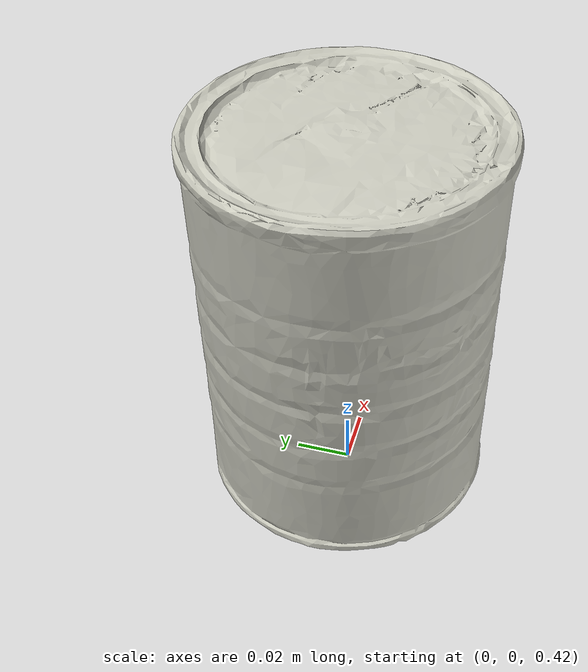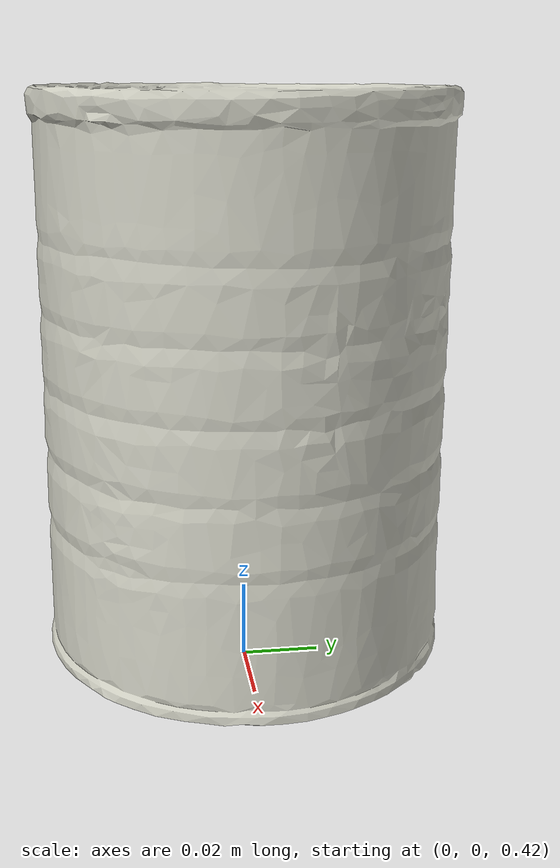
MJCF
<mujoco>
  <asset>
    <mesh name="002_master_chef_can_visual" file="objects/002_master_chef_can/visual.stl" />
    <mesh name="002_master_chef_can_col_00" file="objects/002_master_chef_can/collision/002_master_chef_can_00.stl" />
    <mesh name="002_master_chef_can_col_01" file="objects/002_master_chef_can/collision/002_master_chef_can_01.stl" />
    <mesh name="002_master_chef_can_col_02" file="objects/002_master_chef_can/collision/002_master_chef_can_02.stl" />
    <mesh name="002_master_chef_can_col_03" file="objects/002_master_chef_can/collision/002_master_chef_can_03.stl" />
    <mesh name="002_master_chef_can_col_04" file="objects/002_master_chef_can/collision/002_master_chef_can_04.stl" />
    <mesh name="002_master_chef_can_col_05" file="objects/002_master_chef_can/collision/002_master_chef_can_05.stl" />
    <mesh name="002_master_chef_can_col_06" file="objects/002_master_chef_can/collision/002_master_chef_can_06.stl" />
    <mesh name="002_master_chef_can_col_07" file="objects/002_master_chef_can/collision/002_master_chef_can_07.stl" />
    <mesh name="002_master_chef_can_col_08" file="objects/002_master_chef_can/collision/002_master_chef_can_08.stl" />
    <mesh name="002_master_chef_can_col_09" file="objects/002_master_chef_can/collision/002_master_chef_can_09.stl" />
    <mesh name="002_master_chef_can_col_10" file="objects/002_master_chef_can/collision/002_master_chef_can_10.stl" />
    <mesh name="002_master_chef_can_col_11" file="objects/002_master_chef_can/collision/002_master_chef_can_11.stl" />
    <mesh name="002_master_chef_can_col_12" file="objects/002_master_chef_can/collision/002_master_chef_can_12.stl" />
    <mesh name="002_master_chef_can_col_13" file="objects/002_master_chef_can/collision/002_master_chef_can_13.stl" />
    <mesh name="002_master_chef_can_col_14" file="objects/002_master_chef_can/collision/002_master_chef_can_14.stl" />
    <mesh name="002_master_chef_can_col_15" file="objects/002_master_chef_can/collision/002_master_chef_can_15.stl" />
    <mesh name="002_master_chef_can_col_16" file="objects/002_master_chef_can/collision/002_master_chef_can_16.stl" />
    <mesh name="002_master_chef_can_col_17" file="objects/002_master_chef_can/collision/002_master_chef_can_17.stl" />
    <mesh name="002_master_chef_can_col_18" file="objects/002_master_chef_can/collision/002_master_chef_can_18.stl" />
    <mesh name="002_master_chef_can_col_19" file="objects/002_master_chef_can/collision/002_master_chef_can_19.stl" />
    <mesh name="002_master_chef_can_col_20" file="objects/002_master_chef_can/collision/002_master_chef_can_20.stl" />
    <mesh name="002_master_chef_can_col_21" file="objects/002_master_chef_can/collision/002_master_chef_can_21.stl" />
    <mesh name="002_master_chef_can_col_22" file="objects/002_master_chef_can/collision/002_master_chef_can_22.stl" />
    <mesh name="002_master_chef_can_col_23" file="objects/002_master_chef_can/collision/002_master_chef_can_23.stl" />
    <mesh name="002_master_chef_can_col_24" file="objects/002_master_chef_can/collision/002_master_chef_can_24.stl" />
    <mesh name="002_master_chef_can_col_25" file="objects/002_master_chef_can/collision/002_master_chef_can_25.stl" />
    <mesh name="002_master_chef_can_col_26" file="objects/002_master_chef_can/collision/002_master_chef_can_26.stl" />
    <mesh name="002_master_chef_can_col_27" file="objects/002_master_chef_can/collision/002_master_chef_can_27.stl" />
    <mesh name="002_master_chef_can_col_28" file="objects/002_master_chef_can/collision/002_master_chef_can_28.stl" />
    <mesh name="002_master_chef_can_col_29" file="objects/002_master_chef_can/collision/002_master_chef_can_29.stl" />
    <mesh name="002_master_chef_can_col_30" file="objects/002_master_chef_can/collision/002_master_chef_can_30.stl" />
    <mesh name="002_master_chef_can_col_31" file="objects/002_master_chef_can/collision/002_master_chef_can_31.stl" />
  </asset>
  <worldbody>
    <body name="002_master_chef_can" pos="0 0 0.5">
      <freejoint name="002_master_chef_can_free" />
      <geom type="mesh" mesh="002_master_chef_can_visual" contype="0" conaffinity="0" group="2" rgba="0.8 0.8 0.75 1" />
      <geom type="mesh" mesh="002_master_chef_can_col_00" group="3" condim="4" friction="0.8 0.01 0.001" density="1000" solref="0.005 1" solimp="0.9 0.98 0.001" />
      <geom type="mesh" mesh="002_master_chef_can_col_01" group="3" condim="4" friction="0.8 0.01 0.001" density="1000" solref="0.005 1" solimp="0.9 0.98 0.001" />
      <geom type="mesh" mesh="002_master_chef_can_col_02" group="3" condim="4" friction="0.8 0.01 0.001" density="1000" solref="0.005 1" solimp="0.9 0.98 0.001" />
      <geom type="mesh" mesh="002_master_chef_can_col_03" group="3" condim="4" friction="0.8 0.01 0.001" density="1000" solref="0.005 1" solimp="0.9 0.98 0.001" />
      <geom type="mesh" mesh="002_master_chef_can_col_04" group="3" condim="4" friction="0.8 0.01 0.001" density="1000" solref="0.005 1" solimp="0.9 0.98 0.001" />
      <geom type="mesh" mesh="002_master_chef_can_col_05" group="3" condim="4" friction="0.8 0.01 0.001" density="1000" solref="0.005 1" solimp="0.9 0.98 0.001" />
      <geom type="mesh" mesh="002_master_chef_can_col_06" group="3" condim="4" friction="0.8 0.01 0.001" density="1000" solref="0.005 1" solimp="0.9 0.98 0.001" />
      <geom type="mesh" mesh="002_master_chef_can_col_07" group="3" condim="4" friction="0.8 0.01 0.001" density="1000" solref="0.005 1" solimp="0.9 0.98 0.001" />
      <geom type="mesh" mesh="002_master_chef_can_col_08" group="3" condim="4" friction="0.8 0.01 0.001" density="1000" solref="0.005 1" solimp="0.9 0.98 0.001" />
      <geom type="mesh" mesh="002_master_chef_can_col_09" group="3" condim="4" friction="0.8 0.01 0.001" density="1000" solref="0.005 1" solimp="0.9 0.98 0.001" />
      <geom type="mesh" mesh="002_master_chef_can_col_10" group="3" condim="4" friction="0.8 0.01 0.001" density="1000" solref="0.005 1" solimp="0.9 0.98 0.001" />
      <geom type="mesh" mesh="002_master_chef_can_col_11" group="3" condim="4" friction="0.8 0.01 0.001" density="1000" solref="0.005 1" solimp="0.9 0.98 0.001" />
      <geom type="mesh" mesh="002_master_chef_can_col_12" group="3" condim="4" friction="0.8 0.01 0.001" density="1000" solref="0.005 1" solimp="0.9 0.98 0.001" />
      <geom type="mesh" mesh="002_master_chef_can_col_13" group="3" condim="4" friction="0.8 0.01 0.001" density="1000" solref="0.005 1" solimp="0.9 0.98 0.001" />
      <geom type="mesh" mesh="002_master_chef_can_col_14" group="3" condim="4" friction="0.8 0.01 0.001" density="1000" solref="0.005 1" solimp="0.9 0.98 0.001" />
      <geom type="mesh" mesh="002_master_chef_can_col_15" group="3" condim="4" friction="0.8 0.01 0.001" density="1000" solref="0.005 1" solimp="0.9 0.98 0.001" />
      <geom type="mesh" mesh="002_master_chef_can_col_16" group="3" condim="4" friction="0.8 0.01 0.001" density="1000" solref="0.005 1" solimp="0.9 0.98 0.001" />
      <geom type="mesh" mesh="002_master_chef_can_col_17" group="3" condim="4" friction="0.8 0.01 0.001" density="1000" solref="0.005 1" solimp="0.9 0.98 0.001" />
      <geom type="mesh" mesh="002_master_chef_can_col_18" group="3" condim="4" friction="0.8 0.01 0.001" density="1000" solref="0.005 1" solimp="0.9 0.98 0.001" />
      <geom type="mesh" mesh="002_master_chef_can_col_19" group="3" condim="4" friction="0.8 0.01 0.001" density="1000" solref="0.005 1" solimp="0.9 0.98 0.001" />
      <geom type="mesh" mesh="002_master_chef_can_col_20" group="3" condim="4" friction="0.8 0.01 0.001" density="1000" solref="0.005 1" solimp="0.9 0.98 0.001" />
      <geom type="mesh" mesh="002_master_chef_can_col_21" group="3" condim="4" friction="0.8 0.01 0.001" density="1000" solref="0.005 1" solimp="0.9 0.98 0.001" />
      <geom type="mesh" mesh="002_master_chef_can_col_22" group="3" condim="4" friction="0.8 0.01 0.001" density="1000" solref="0.005 1" solimp="0.9 0.98 0.001" />
      <geom type="mesh" mesh="002_master_chef_can_col_23" group="3" condim="4" friction="0.8 0.01 0.001" density="1000" solref="0.005 1" solimp="0.9 0.98 0.001" />
      <geom type="mesh" mesh="002_master_chef_can_col_24" group="3" condim="4" friction="0.8 0.01 0.001" density="1000" solref="0.005 1" solimp="0.9 0.98 0.001" />
      <geom type="mesh" mesh="002_master_chef_can_col_25" group="3" condim="4" friction="0.8 0.01 0.001" density="1000" solref="0.005 1" solimp="0.9 0.98 0.001" />
      <geom type="mesh" mesh="002_master_chef_can_col_26" group="3" condim="4" friction="0.8 0.01 0.001" density="1000" solref="0.005 1" solimp="0.9 0.98 0.001" />
      <geom type="mesh" mesh="002_master_chef_can_col_27" group="3" condim="4" friction="0.8 0.01 0.001" density="1000" solref="0.005 1" solimp="0.9 0.98 0.001" />
      <geom type="mesh" mesh="002_master_chef_can_col_28" group="3" condim="4" friction="0.8 0.01 0.001" density="1000" solref="0.005 1" solimp="0.9 0.98 0.001" />
      <geom type="mesh" mesh="002_master_chef_can_col_29" group="3" condim="4" friction="0.8 0.01 0.001" density="1000" solref="0.005 1" solimp="0.9 0.98 0.001" />
      <geom type="mesh" mesh="002_master_chef_can_col_30" group="3" condim="4" friction="0.8 0.01 0.001" density="1000" solref="0.005 1" solimp="0.9 0.98 0.001" />
      <geom type="mesh" mesh="002_master_chef_can_col_31" group="3" condim="4" friction="0.8 0.01 0.001" density="1000" solref="0.005 1" solimp="0.9 0.98 0.001" />
    </body>
  </worldbody>
</mujoco>
